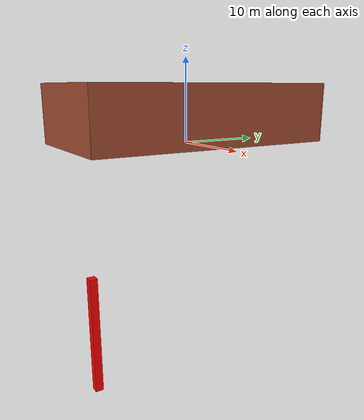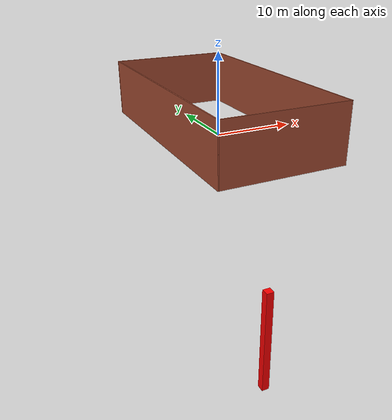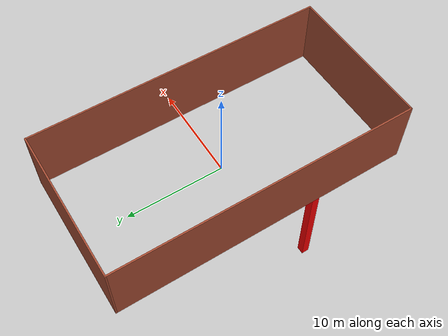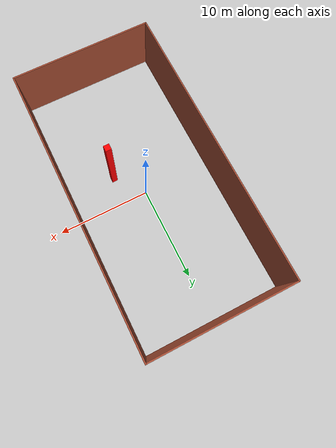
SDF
<sdf version="1.7">
 <world name="off-road_world">
  <light type="directional" name="sun">
   <pose>0 0 10 0 0 0</pose>
   <diffuse>0.8 0.8 0.8 1</diffuse>
   <specular>0.2 0.2 0.2 1</specular>
   <attenuation>
    <range>1000</range>
    <constant>0.9</constant>
    <linear>0.01</linear>
    <quadratic>0.001</quadratic>
   </attenuation>
   <direction>-0.5 0.1 -0.9</direction>
  </light>
  <include><name>high_wall</name><uri>model://high_wall</uri></include>
  <include><name>unit_box_real</name><pose>0 -13 -22.54 0 0 0</pose><uri>model://unit_box_real</uri></include>
  <include>
   <name>top_down_camera</name>
   <pose>0 0 80 0 1.57079632679 0</pose>
   <uri>model://top_down_camera</uri>
  </include>
 </world>
</sdf>

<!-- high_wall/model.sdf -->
<sdf version='1.7'>
  <model name='high_wall'>
    <pose>0 0 0 0 -0 0</pose>
    <link name='Wall_0'>
      <collision name='Wall_0_Collision'>
        <geometry>
          <box>
            <size>30.15 0.15 7</size>
          </box>
        </geometry>
        <pose>0 0 3.5 0 -0 0</pose>
      </collision>
      <visual name='Wall_0_Visual'>
        <pose>0 0 3.5 0 -0 0</pose>
        <geometry>
          <box>
            <size>30.15 0.15 7</size>
          </box>
        </geometry>
        <material>
          <script>
            <uri>file://media/materials/scripts/gazebo.material</uri>
            <name>Gazebo/Bricks</name>
          </script>
          <ambient>1 1 1 1</ambient>
        </material>
        <meta>
          <layer>0</layer>
        </meta>
      </visual>
      <pose>-7.5 0 0 0 -0 -1.5708</pose>
    </link>
    <link name='Wall_1'>
      <collision name='Wall_1_Collision'>
        <geometry>
          <box>
            <size>15.15 0.15 7</size>
          </box>
        </geometry>
        <pose>0 0 3.5 0 -0 0</pose>
      </collision>
      <visual name='Wall_1_Visual'>
        <pose>0 0 3.5 0 -0 0</pose>
        <geometry>
          <box>
            <size>15.15 0.15 7</size>
          </box>
        </geometry>
        <material>
          <script>
            <uri>file://media/materials/scripts/gazebo.material</uri>
            <name>Gazebo/Bricks</name>
          </script>
          <ambient>1 1 1 1</ambient>
        </material>
        <meta>
          <layer>0</layer>
        </meta>
      </visual>
      <pose>0 -15 0 0 -0 0</pose>
    </link>
    <link name='Wall_2'>
      <collision name='Wall_2_Collision'>
        <geometry>
          <box>
            <size>30.15 0.15 7</size>
          </box>
        </geometry>
        <pose>0 0 3.5 0 -0 0</pose>
      </collision>
      <visual name='Wall_2_Visual'>
        <pose>0 0 3.5 0 -0 0</pose>
        <geometry>
          <box>
            <size>30.15 0.15 7</size>
          </box>
        </geometry>
        <material>
          <script>
            <uri>file://media/materials/scripts/gazebo.material</uri>
            <name>Gazebo/Bricks</name>
          </script>
          <ambient>1 1 1 1</ambient>
        </material>
        <meta>
          <layer>0</layer>
        </meta>
      </visual>
      <pose>7.5 0 0 0 -0 1.5708</pose>
    </link>
    <link name='Wall_3'>
      <collision name='Wall_3_Collision'>
        <geometry>
          <box>
            <size>15.15 0.15 7</size>
          </box>
        </geometry>
        <pose>0 0 3.5 0 -0 0</pose>
      </collision>
      <visual name='Wall_3_Visual'>
        <pose>0 0 3.5 0 -0 0</pose>
        <geometry>
          <box>
            <size>15.15 0.15 7</size>
          </box>
        </geometry>
        <material>
          <script>
            <uri>file://media/materials/scripts/gazebo.material</uri>
            <name>Gazebo/Bricks</name>
          </script>
          <ambient>1 1 1 1</ambient>
        </material>
        <meta>
          <layer>0</layer>
        </meta>
      </visual>
      <pose>0 15 0 0 -0 3.14159</pose>
    </link>
    <static>1</static>
  </model>
</sdf>

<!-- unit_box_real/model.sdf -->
<sdf version='1.7'>
  <model name='unit_box_real'>
    <link name='link'>
      <inertial>
        <mass>1</mass>
        <inertia>
          <ixx>0.166667</ixx>
          <ixy>0</ixy>
          <ixz>0</ixz>
          <iyy>0.166667</iyy>
          <iyz>0</iyz>
          <izz>0.166667</izz>
        </inertia>
        <pose>0 0 0 0 -0 0</pose>
      </inertial>
      <self_collide>0</self_collide>
      <enable_wind>0</enable_wind>
      <kinematic>0</kinematic>
      <pose>0 0 0 0 -0 0</pose>
      <visual name='visual'>
        <geometry>
          <box>
            <size>1 1 15</size>
          </box>
        </geometry>
        <material>
          <script>
            <name>Gazebo/Grey</name>
            <uri>file://media/materials/scripts/gazebo.material</uri>
          </script>
          <shader type='pixel'/>
          <ambient>1 0 0 1</ambient>
        </material>
        <pose>0 0 0 0 -0 0</pose>
        <transparency>0</transparency>
        <cast_shadows>1</cast_shadows>
      </visual>
      <collision name='collision'>
        <laser_retro>0</laser_retro>
        <max_contacts>10</max_contacts>
        <pose>0 0 0 0 -0 0</pose>
        <geometry>
          <box>
            <size>1 1 1</size>
          </box>
        </geometry>
        <surface>
          <friction>
            <ode>
              <mu>1</mu>
              <mu2>1</mu2>
              <fdir1>0 0 0</fdir1>
              <slip1>0</slip1>
              <slip2>0</slip2>
            </ode>
            <torsional>
              <coefficient>1</coefficient>
              <patch_radius>0</patch_radius>
              <surface_radius>0</surface_radius>
              <use_patch_radius>1</use_patch_radius>
              <ode>
                <slip>0</slip>
              </ode>
            </torsional>
          </friction>
          <bounce>
            <restitution_coefficient>0</restitution_coefficient>
            <threshold>1e+06</threshold>
          </bounce>
          <contact>
            <collide_without_contact>0</collide_without_contact>
            <collide_without_contact_bitmask>1</collide_without_contact_bitmask>
            <collide_bitmask>1</collide_bitmask>
            <ode>
              <soft_cfm>0</soft_cfm>
              <soft_erp>0.2</soft_erp>
              <kp>1e+13</kp>
              <kd>1</kd>
              <max_vel>0.01</max_vel>
              <min_depth>0</min_depth>
            </ode>
            <bullet>
              <split_impulse>1</split_impulse>
              <split_impulse_penetration_threshold>-0.01</split_impulse_penetration_threshold>
              <soft_cfm>0</soft_cfm>
              <soft_erp>0.2</soft_erp>
              <kp>1e+13</kp>
              <kd>1</kd>
            </bullet>
          </contact>
        </surface>
      </collision>
    </link>
    <static>1</static>
    <allow_auto_disable>1</allow_auto_disable>
  </model>
</sdf>

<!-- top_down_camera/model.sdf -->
<sdf version="1.9">
  <model name="top_down_camera">
    <static>true</static>
    <pose>500 500 200 0 1.57 0</pose>
    <link name="link">
      <sensor name="top_cam" type="camera">
        <always_on>1</always_on>
        <update_rate>30</update_rate>
        <topic>top_down_camera</topic>
        <camera>
          <horizontal_fov>1.2</horizontal_fov>
          <image>
            <width>1920</width>
            <height>1080</height>
            <format>R8G8B8</format>
          </image>
          <clip>
            <near>0.1</near>
            <far>500</far>
          </clip>
        </camera>
      </sensor>
    </link>
  </model>
</sdf>
